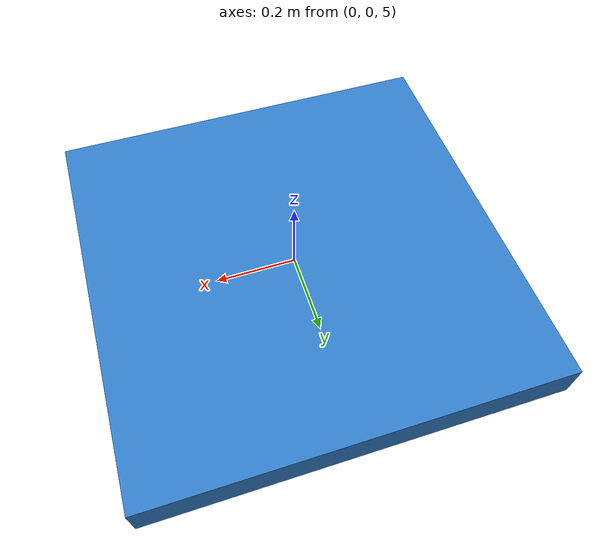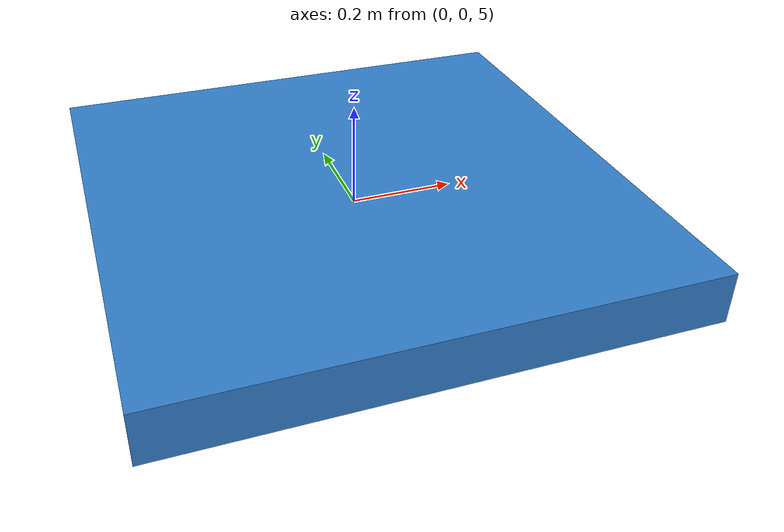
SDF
<?xml version="1.0"?>
<sdf version="1.9">
  <world name="cdpr_world">
    <gravity>0 0 -9.81</gravity>

    <!-- Ground plane -->
    <model name="ground_plane">
      <static>true</static>
      <link name="link">
        <pose>0 0 0 0 0 0</pose>
        <collision name="collision">
          <geometry><plane><normal>0 0 1</normal></plane></geometry>
        </collision>
        <visual name="visual">
          <geometry><plane><normal>0 0 1</normal><size>20 20</size></plane></geometry>
          <material><ambient>0.8 0.8 0.8 1</ambient></material>
        </visual>
      </link>
    </model>

    <!-- Platform (simplified for now) -->
    <model name="platform">
      <pose>0 0 5 0 0 0</pose>
      <link name="platform_link">
        <inertial>
          <mass>10.0</mass>
          <inertia>
            <ixx>0.166</ixx><ixy>0</ixy><ixz>0</ixz>
            <iyy>0.166</iyy><iyz>0</iyz>
            <izz>0.166</izz>
          </inertia>
        </inertial>
        <visual name="visual">
          <geometry><box><size>1 1 0.1</size></box></geometry>
          <material><ambient>0.2 0.5 0.8 1</ambient></material>
        </visual>
      </link>
    </model>

    <!-- Light -->
    <light type="directional" name="sun">
      <pose>0 0 10 0 0 0</pose>
      <diffuse>0.8 0.8 0.8 1</diffuse>
      <direction>-0.5 -0.5 -1</direction>
    </light>
  </world>
</sdf>
